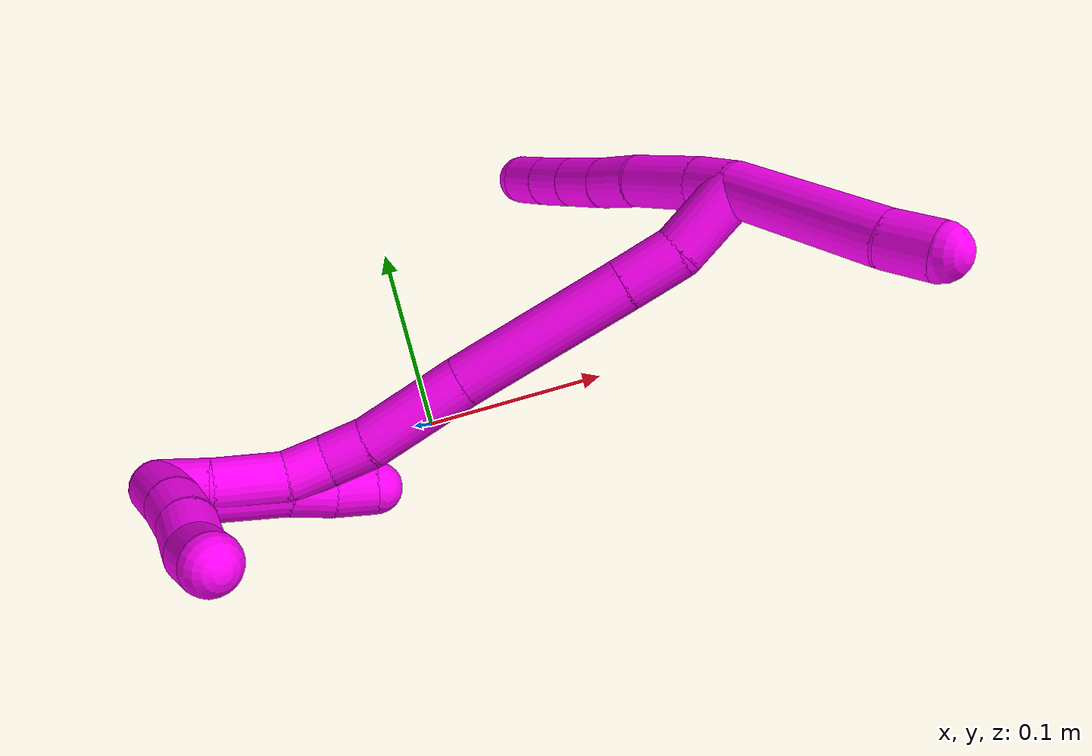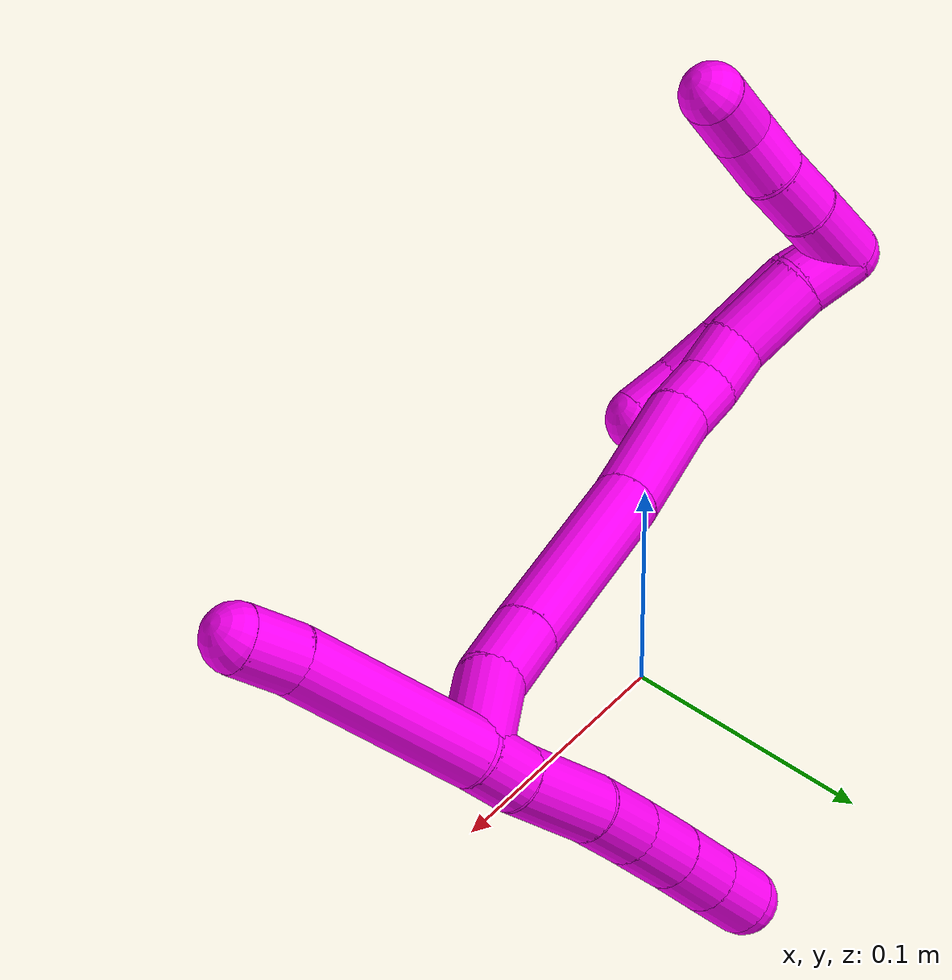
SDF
<sdf version="1.7">
 <world name="default">
  <model name="10">
   <static>0</static>
   <link name="10">
    <collision name="collision-cylinder-e_1_2_8">
     <pose>0.000129 0.000722 -0.010302 -3.07162 0.012512 -0.35374</pose>
     <geometry><cylinder><radius>0.0125</radius><length>0.020656</length></cylinder></geometry>
     <surface>
      <friction><ode><mu>1.16</mu><mu2>1.16</mu2><slip1>0</slip1><slip2>0</slip2></ode></friction>
      <contact><ode><kp>1e+06</kp><kd>1</kd><max_vel>0</max_vel><min_depth>0.001</min_depth></ode></contact>
     </surface>
    </collision>
    <visual name="visual-cylinder-e_1_2_8">
     <pose>0.000129 0.000722 -0.010302 -3.07162 0.012512 -0.35374</pose>
     <geometry><cylinder><radius>0.0125</radius><length>0.020656</length></cylinder></geometry>
     <material><ambient>1 0 0.964706 1</ambient></material>
    </visual>
    <collision name="collision-cylinder-e_2_8_9">
     <pose>-0.001568 0.002249 -0.039062 -3.09801 -0.098528 2.30912</pose>
     <geometry><cylinder><radius>0.0125</radius><length>0.037131</length></cylinder></geometry>
     <surface>
      <friction><ode><mu>1.16</mu><mu2>1.16</mu2><slip1>0</slip1><slip2>0</slip2></ode></friction>
      <contact><ode><kp>1e+06</kp><kd>1</kd><max_vel>0</max_vel><min_depth>0.001</min_depth></ode></contact>
     </surface>
    </collision>
    <visual name="visual-cylinder-e_2_8_9">
     <pose>-0.001568 0.002249 -0.039062 -3.09801 -0.098528 2.30912</pose>
     <geometry><cylinder><radius>0.0125</radius><length>0.037131</length></cylinder></geometry>
     <material><ambient>1 0 0.964706 1</ambient></material>
    </visual>
    <collision name="collision-cylinder-e_3_9_10">
     <pose>-0.003889 0.002279 -0.069534 3.07718 -0.04108 -1.13522</pose>
     <geometry><cylinder><radius>0.0125</radius><length>0.024098</length></cylinder></geometry>
     <surface>
      <friction><ode><mu>1.16</mu><mu2>1.16</mu2><slip1>0</slip1><slip2>0</slip2></ode></friction>
      <contact><ode><kp>1e+06</kp><kd>1</kd><max_vel>0</max_vel><min_depth>0.001</min_depth></ode></contact>
     </surface>
    </collision>
    <visual name="visual-cylinder-e_3_9_10">
     <pose>-0.003889 0.002279 -0.069534 3.07718 -0.04108 -1.13522</pose>
     <geometry><cylinder><radius>0.0125</radius><length>0.024098</length></cylinder></geometry>
     <material><ambient>1 0 0.964706 1</ambient></material>
    </visual>
    <collision name="collision-cylinder-e_4_10_11">
     <pose>-0.004463 0.00133 -0.093677 3.12721 -0.00654 -0.853618</pose>
     <geometry><cylinder><radius>0.0125</radius><length>0.024261</length></cylinder></geometry>
     <surface>
      <friction><ode><mu>1.16</mu><mu2>1.16</mu2><slip1>0</slip1><slip2>0</slip2></ode></friction>
      <contact><ode><kp>1e+06</kp><kd>1</kd><max_vel>0</max_vel><min_depth>0.001</min_depth></ode></contact>
     </surface>
    </collision>
    <visual name="visual-cylinder-e_4_10_11">
     <pose>-0.004463 0.00133 -0.093677 3.12721 -0.00654 -0.853618</pose>
     <geometry><cylinder><radius>0.0125</radius><length>0.024261</length></cylinder></geometry>
     <material><ambient>1 0 0.964706 1</ambient></material>
    </visual>
    <collision name="collision-cylinder-e_5_11_12">
     <pose>-0.004426 0.000909 -0.117019 3.11964 0.010403 0.885032</pose>
     <geometry><cylinder><radius>0.0125</radius><length>0.022434</length></cylinder></geometry>
     <surface>
      <friction><ode><mu>1.16</mu><mu2>1.16</mu2><slip1>0</slip1><slip2>0</slip2></ode></friction>
      <contact><ode><kp>1e+06</kp><kd>1</kd><max_vel>0</max_vel><min_depth>0.001</min_depth></ode></contact>
     </surface>
    </collision>
    <visual name="visual-cylinder-e_5_11_12">
     <pose>-0.004426 0.000909 -0.117019 3.11964 0.010403 0.885032</pose>
     <geometry><cylinder><radius>0.0125</radius><length>0.022434</length></cylinder></geometry>
     <material><ambient>1 0 0.964706 1</ambient></material>
    </visual>
    <collision name="collision-cylinder-e_6_12_6">
     <pose>-0.004204 0.000725 -0.138942 -3.13575 0.009833 -2.06885</pose>
     <geometry><cylinder><radius>0.0125</radius><length>0.02142</length></cylinder></geometry>
     <surface>
      <friction><ode><mu>1.16</mu><mu2>1.16</mu2><slip1>0</slip1><slip2>0</slip2></ode></friction>
      <contact><ode><kp>1e+06</kp><kd>1</kd><max_vel>0</max_vel><min_depth>0.001</min_depth></ode></contact>
     </surface>
    </collision>
    <visual name="visual-cylinder-e_6_12_6">
     <pose>-0.004204 0.000725 -0.138942 -3.13575 0.009833 -2.06885</pose>
     <geometry><cylinder><radius>0.0125</radius><length>0.02142</length></cylinder></geometry>
     <material><ambient>1 0 0.964706 1</ambient></material>
    </visual>
    <collision name="collision-cylinder-e_1_2_13">
     <pose>-0.000679 -0.008901 0.037727 0.231703 -0.017526 -0.00204</pose>
     <geometry><cylinder><radius>0.0125</radius><length>0.077537</length></cylinder></geometry>
     <surface>
      <friction><ode><mu>1.16</mu><mu2>1.16</mu2><slip1>0</slip1><slip2>0</slip2></ode></friction>
      <contact><ode><kp>1e+06</kp><kd>1</kd><max_vel>0</max_vel><min_depth>0.001</min_depth></ode></contact>
     </surface>
    </collision>
    <visual name="visual-cylinder-e_1_2_13">
     <pose>-0.000679 -0.008901 0.037727 0.231703 -0.017526 -0.00204</pose>
     <geometry><cylinder><radius>0.0125</radius><length>0.077537</length></cylinder></geometry>
     <material><ambient>1 0 0.964706 1</ambient></material>
    </visual>
    <collision name="collision-cylinder-e_2_13_5">
     <pose>-0.000225 -0.020188 0.08637 0.215184 0.101139 0.010933</pose>
     <geometry><cylinder><radius>0.0125</radius><length>0.022463</length></cylinder></geometry>
     <surface>
      <friction><ode><mu>1.16</mu><mu2>1.16</mu2><slip1>0</slip1><slip2>0</slip2></ode></friction>
      <contact><ode><kp>1e+06</kp><kd>1</kd><max_vel>0</max_vel><min_depth>0.001</min_depth></ode></contact>
     </surface>
    </collision>
    <visual name="visual-cylinder-e_2_13_5">
     <pose>-0.000225 -0.020188 0.08637 0.215184 0.101139 0.010933</pose>
     <geometry><cylinder><radius>0.0125</radius><length>0.022463</length></cylinder></geometry>
     <material><ambient>1 0 0.964706 1</ambient></material>
    </visual>
    <collision name="collision-cylinder-e_1_2_14">
     <pose>-0.01495 -0.008947 -0.00675 2.21712 -0.92751 -1.5746</pose>
     <geometry><cylinder><radius>0.0125</radius><length>0.037369</length></cylinder></geometry>
     <surface>
      <friction><ode><mu>1.16</mu><mu2>1.16</mu2><slip1>0</slip1><slip2>0</slip2></ode></friction>
      <contact><ode><kp>1e+06</kp><kd>1</kd><max_vel>0</max_vel><min_depth>0.001</min_depth></ode></contact>
     </surface>
    </collision>
    <visual name="visual-cylinder-e_1_2_14">
     <pose>-0.01495 -0.008947 -0.00675 2.21712 -0.92751 -1.5746</pose>
     <geometry><cylinder><radius>0.0125</radius><length>0.037369</length></cylinder></geometry>
     <material><ambient>1 0 0.964706 1</ambient></material>
    </visual>
    <collision name="collision-cylinder-e_2_14_15">
     <pose>-0.041347 -0.021155 -0.020819 2.72238 -0.960089 -2.36584</pose>
     <geometry><cylinder><radius>0.0125</radius><length>0.027947</length></cylinder></geometry>
     <surface>
      <friction><ode><mu>1.16</mu><mu2>1.16</mu2><slip1>0</slip1><slip2>0</slip2></ode></friction>
      <contact><ode><kp>1e+06</kp><kd>1</kd><max_vel>0</max_vel><min_depth>0.001</min_depth></ode></contact>
     </surface>
    </collision>
    <visual name="visual-cylinder-e_2_14_15">
     <pose>-0.041347 -0.021155 -0.020819 2.72238 -0.960089 -2.36584</pose>
     <geometry><cylinder><radius>0.0125</radius><length>0.027947</length></cylinder></geometry>
     <material><ambient>1 0 0.964706 1</ambient></material>
    </visual>
    <collision name="collision-cylinder-e_3_15_16">
     <pose>-0.08739 -0.034304 -0.051269 2.73768 -0.942087 -2.37707</pose>
     <geometry><cylinder><radius>0.0125</radius><length>0.085547</length></cylinder></geometry>
     <surface>
      <friction><ode><mu>1.16</mu><mu2>1.16</mu2><slip1>0</slip1><slip2>0</slip2></ode></friction>
      <contact><ode><kp>1e+06</kp><kd>1</kd><max_vel>0</max_vel><min_depth>0.001</min_depth></ode></contact>
     </surface>
    </collision>
    <visual name="visual-cylinder-e_3_15_16">
     <pose>-0.08739 -0.034304 -0.051269 2.73768 -0.942087 -2.37707</pose>
     <geometry><cylinder><radius>0.0125</radius><length>0.085547</length></cylinder></geometry>
     <material><ambient>1 0 0.964706 1</ambient></material>
    </visual>
    <collision name="collision-cylinder-e_4_16_17">
     <pose>-0.14389 -0.050459 -0.086748 2.6718 -1.00704 -2.32195</pose>
     <geometry><cylinder><radius>0.0125</radius><length>0.051833</length></cylinder></geometry>
     <surface>
      <friction><ode><mu>1.16</mu><mu2>1.16</mu2><slip1>0</slip1><slip2>0</slip2></ode></friction>
      <contact><ode><kp>1e+06</kp><kd>1</kd><max_vel>0</max_vel><min_depth>0.001</min_depth></ode></contact>
     </surface>
    </collision>
    <visual name="visual-cylinder-e_4_16_17">
     <pose>-0.14389 -0.050459 -0.086748 2.6718 -1.00704 -2.32195</pose>
     <geometry><cylinder><radius>0.0125</radius><length>0.051833</length></cylinder></geometry>
     <material><ambient>1 0 0.964706 1</ambient></material>
    </visual>
    <collision name="collision-cylinder-e_5_17_18">
     <pose>-0.174795 -0.057524 -0.104551 2.99681 -1.02118 -2.88409</pose>
     <geometry><cylinder><radius>0.0125</radius><length>0.021105</length></cylinder></geometry>
     <surface>
      <friction><ode><mu>1.16</mu><mu2>1.16</mu2><slip1>0</slip1><slip2>0</slip2></ode></friction>
      <contact><ode><kp>1e+06</kp><kd>1</kd><max_vel>0</max_vel><min_depth>0.001</min_depth></ode></contact>
     </surface>
    </collision>
    <visual name="visual-cylinder-e_5_17_18">
     <pose>-0.174795 -0.057524 -0.104551 2.99681 -1.02118 -2.88409</pose>
     <geometry><cylinder><radius>0.0125</radius><length>0.021105</length></cylinder></geometry>
     <material><ambient>1 0 0.964706 1</ambient></material>
    </visual>
    <collision name="collision-cylinder-e_6_18_19">
     <pose>-0.193477 -0.057815 -0.113241 -2.98679 -1.24478 2.92626</pose>
     <geometry><cylinder><radius>0.0125</radius><length>0.020445</length></cylinder></geometry>
     <surface>
      <friction><ode><mu>1.16</mu><mu2>1.16</mu2><slip1>0</slip1><slip2>0</slip2></ode></friction>
      <contact><ode><kp>1e+06</kp><kd>1</kd><max_vel>0</max_vel><min_depth>0.001</min_depth></ode></contact>
     </surface>
    </collision>
    <visual name="visual-cylinder-e_6_18_19">
     <pose>-0.193477 -0.057815 -0.113241 -2.98679 -1.24478 2.92626</pose>
     <geometry><cylinder><radius>0.0125</radius><length>0.020445</length></cylinder></geometry>
     <material><ambient>1 0 0.964706 1</ambient></material>
    </visual>
    <collision name="collision-cylinder-e_7_19_20">
     <pose>-0.217867 -0.050937 -0.120945 -2.18247 -1.08395 1.7168</pose>
     <geometry><cylinder><radius>0.0125</radius><length>0.033277</length></cylinder></geometry>
     <surface>
      <friction><ode><mu>1.16</mu><mu2>1.16</mu2><slip1>0</slip1><slip2>0</slip2></ode></friction>
      <contact><ode><kp>1e+06</kp><kd>1</kd><max_vel>0</max_vel><min_depth>0.001</min_depth></ode></contact>
     </surface>
    </collision>
    <visual name="visual-cylinder-e_7_19_20">
     <pose>-0.217867 -0.050937 -0.120945 -2.18247 -1.08395 1.7168</pose>
     <geometry><cylinder><radius>0.0125</radius><length>0.033277</length></cylinder></geometry>
     <material><ambient>1 0 0.964706 1</ambient></material>
    </visual>
    <collision name="collision-cylinder-e_8_20_1">
     <pose>-0.241828 -0.040325 -0.130177 -2.41418 -0.967617 1.88778</pose>
     <geometry><cylinder><radius>0.0125</radius><length>0.022477</length></cylinder></geometry>
     <surface>
      <friction><ode><mu>1.16</mu><mu2>1.16</mu2><slip1>0</slip1><slip2>0</slip2></ode></friction>
      <contact><ode><kp>1e+06</kp><kd>1</kd><max_vel>0</max_vel><min_depth>0.001</min_depth></ode></contact>
     </surface>
    </collision>
    <visual name="visual-cylinder-e_8_20_1">
     <pose>-0.241828 -0.040325 -0.130177 -2.41418 -0.967617 1.88778</pose>
     <geometry><cylinder><radius>0.0125</radius><length>0.022477</length></cylinder></geometry>
     <material><ambient>1 0 0.964706 1</ambient></material>
    </visual>
    <collision name="collision-cylinder-e_1_1_21">
     <pose>-0.252632 -0.03494 -0.119741 -0.075249 -0.10132 0.003817</pose>
     <geometry><cylinder><radius>0.0125</radius><length>0.030638</length></cylinder></geometry>
     <surface>
      <friction><ode><mu>1.16</mu><mu2>1.16</mu2><slip1>0</slip1><slip2>0</slip2></ode></friction>
      <contact><ode><kp>1e+06</kp><kd>1</kd><max_vel>0</max_vel><min_depth>0.001</min_depth></ode></contact>
     </surface>
    </collision>
    <visual name="visual-cylinder-e_1_1_21">
     <pose>-0.252632 -0.03494 -0.119741 -0.075249 -0.10132 0.003817</pose>
     <geometry><cylinder><radius>0.0125</radius><length>0.030638</length></cylinder></geometry>
     <material><ambient>1 0 0.964706 1</ambient></material>
    </visual>
    <collision name="collision-cylinder-e_2_21_22">
     <pose>-0.255917 -0.034009 -0.093395 0.019246 -0.154353 -0.001488</pose>
     <geometry><cylinder><radius>0.0125</radius><length>0.022569</length></cylinder></geometry>
     <surface>
      <friction><ode><mu>1.16</mu><mu2>1.16</mu2><slip1>0</slip1><slip2>0</slip2></ode></friction>
      <contact><ode><kp>1e+06</kp><kd>1</kd><max_vel>0</max_vel><min_depth>0.001</min_depth></ode></contact>
     </surface>
    </collision>
    <visual name="visual-cylinder-e_2_21_22">
     <pose>-0.255917 -0.034009 -0.093395 0.019246 -0.154353 -0.001488</pose>
     <geometry><cylinder><radius>0.0125</radius><length>0.022569</length></cylinder></geometry>
     <material><ambient>1 0 0.964706 1</ambient></material>
    </visual>
    <collision name="collision-cylinder-e_3_22_23">
     <pose>-0.260635 -0.035053 -0.07148 0.076892 -0.269524 -0.01043</pose>
     <geometry><cylinder><radius>0.0125</radius><length>0.022407</length></cylinder></geometry>
     <surface>
      <friction><ode><mu>1.16</mu><mu2>1.16</mu2><slip1>0</slip1><slip2>0</slip2></ode></friction>
      <contact><ode><kp>1e+06</kp><kd>1</kd><max_vel>0</max_vel><min_depth>0.001</min_depth></ode></contact>
     </surface>
    </collision>
    <visual name="visual-cylinder-e_3_22_23">
     <pose>-0.260635 -0.035053 -0.07148 0.076892 -0.269524 -0.01043</pose>
     <geometry><cylinder><radius>0.0125</radius><length>0.022407</length></cylinder></geometry>
     <material><ambient>1 0 0.964706 1</ambient></material>
    </visual>
    <collision name="collision-cylinder-e_4_23_4">
     <pose>-0.264487 -0.033463 -0.048794 -0.200274 -0.071337 0.00717</pose>
     <geometry><cylinder><radius>0.0125</radius><length>0.024386</length></cylinder></geometry>
     <surface>
      <friction><ode><mu>1.16</mu><mu2>1.16</mu2><slip1>0</slip1><slip2>0</slip2></ode></friction>
      <contact><ode><kp>1e+06</kp><kd>1</kd><max_vel>0</max_vel><min_depth>0.001</min_depth></ode></contact>
     </surface>
    </collision>
    <visual name="visual-cylinder-e_4_23_4">
     <pose>-0.264487 -0.033463 -0.048794 -0.200274 -0.071337 0.00717</pose>
     <geometry><cylinder><radius>0.0125</radius><length>0.024386</length></cylinder></geometry>
     <material><ambient>1 0 0.964706 1</ambient></material>
    </visual>
    <collision name="collision-cylinder-e_1_1_24">
     <pose>-0.242643 -0.042765 -0.131093 1.04843 0.830717 0.499325</pose>
     <geometry><cylinder><radius>0.0125</radius><length>0.022858</length></cylinder></geometry>
     <surface>
      <friction><ode><mu>1.16</mu><mu2>1.16</mu2><slip1>0</slip1><slip2>0</slip2></ode></friction>
      <contact><ode><kp>1e+06</kp><kd>1</kd><max_vel>0</max_vel><min_depth>0.001</min_depth></ode></contact>
     </surface>
    </collision>
    <visual name="visual-cylinder-e_1_1_24">
     <pose>-0.242643 -0.042765 -0.131093 1.04843 0.830717 0.499325</pose>
     <geometry><cylinder><radius>0.0125</radius><length>0.022858</length></cylinder></geometry>
     <material><ambient>1 0 0.964706 1</ambient></material>
    </visual>
    <collision name="collision-cylinder-e_2_24_25">
     <pose>-0.219027 -0.056827 -0.123314 1.08116 1.06707 0.681418</pose>
     <geometry><cylinder><radius>0.0125</radius><length>0.034659</length></cylinder></geometry>
     <surface>
      <friction><ode><mu>1.16</mu><mu2>1.16</mu2><slip1>0</slip1><slip2>0</slip2></ode></friction>
      <contact><ode><kp>1e+06</kp><kd>1</kd><max_vel>0</max_vel><min_depth>0.001</min_depth></ode></contact>
     </surface>
    </collision>
    <visual name="visual-cylinder-e_2_24_25">
     <pose>-0.219027 -0.056827 -0.123314 1.08116 1.06707 0.681418</pose>
     <geometry><cylinder><radius>0.0125</radius><length>0.034659</length></cylinder></geometry>
     <material><ambient>1 0 0.964706 1</ambient></material>
    </visual>
    <collision name="collision-cylinder-e_3_25_26">
     <pose>-0.194827 -0.070194 -0.117642 1.28816 0.96634 0.750576</pose>
     <geometry><cylinder><radius>0.0125</radius><length>0.021932</length></cylinder></geometry>
     <surface>
      <friction><ode><mu>1.16</mu><mu2>1.16</mu2><slip1>0</slip1><slip2>0</slip2></ode></friction>
      <contact><ode><kp>1e+06</kp><kd>1</kd><max_vel>0</max_vel><min_depth>0.001</min_depth></ode></contact>
     </surface>
    </collision>
    <visual name="visual-cylinder-e_3_25_26">
     <pose>-0.194827 -0.070194 -0.117642 1.28816 0.96634 0.750576</pose>
     <geometry><cylinder><radius>0.0125</radius><length>0.021932</length></cylinder></geometry>
     <material><ambient>1 0 0.964706 1</ambient></material>
    </visual>
    <collision name="collision-cylinder-e_4_26_3">
     <pose>-0.177063 -0.079794 -0.11189 0.733297 1.01726 0.421849</pose>
     <geometry><cylinder><radius>0.0125</radius><length>0.02055</length></cylinder></geometry>
     <surface>
      <friction><ode><mu>1.16</mu><mu2>1.16</mu2><slip1>0</slip1><slip2>0</slip2></ode></friction>
      <contact><ode><kp>1e+06</kp><kd>1</kd><max_vel>0</max_vel><min_depth>0.001</min_depth></ode></contact>
     </surface>
    </collision>
    <visual name="visual-cylinder-e_4_26_3">
     <pose>-0.177063 -0.079794 -0.11189 0.733297 1.01726 0.421849</pose>
     <geometry><cylinder><radius>0.0125</radius><length>0.02055</length></cylinder></geometry>
     <material><ambient>1 0 0.964706 1</ambient></material>
    </visual>
    <collision name="collision-sphere-3">
     <pose>-0.168322 -0.08341 -0.107877 0 -0 0</pose>
     <geometry><sphere><radius>0.0125</radius></sphere></geometry>
     <surface>
      <friction><ode><mu>1.16</mu><mu2>1.16</mu2><slip1>0</slip1><slip2>0</slip2></ode></friction>
      <contact><ode><kp>1e+06</kp><kd>1</kd><max_vel>0</max_vel><min_depth>0.001</min_depth></ode></contact>
     </surface>
    </collision>
    <visual name="visual-sphere-3">
     <pose>-0.168322 -0.08341 -0.107877 0 -0 0</pose>
     <geometry><sphere><radius>0.0125</radius></sphere></geometry>
     <material><ambient>1 0 0.964706 1</ambient></material>
    </visual>
    <collision name="collision-sphere-26">
     <pose>-0.185803 -0.076179 -0.115904 0 -0 0</pose>
     <geometry><sphere><radius>0.0125</radius></sphere></geometry>
     <surface>
      <friction><ode><mu>1.16</mu><mu2>1.16</mu2><slip1>0</slip1><slip2>0</slip2></ode></friction>
      <contact><ode><kp>1e+06</kp><kd>1</kd><max_vel>0</max_vel><min_depth>0.001</min_depth></ode></contact>
     </surface>
    </collision>
    <visual name="visual-sphere-26">
     <pose>-0.185803 -0.076179 -0.115904 0 -0 0</pose>
     <geometry><sphere><radius>0.0125</radius></sphere></geometry>
     <material><ambient>1 0 0.964706 1</ambient></material>
    </visual>
    <collision name="collision-sphere-25">
     <pose>-0.20385 -0.064209 -0.11938 0 -0 0</pose>
     <geometry><sphere><radius>0.0125</radius></sphere></geometry>
     <surface>
      <friction><ode><mu>1.16</mu><mu2>1.16</mu2><slip1>0</slip1><slip2>0</slip2></ode></friction>
      <contact><ode><kp>1e+06</kp><kd>1</kd><max_vel>0</max_vel><min_depth>0.001</min_depth></ode></contact>
     </surface>
    </collision>
    <visual name="visual-sphere-25">
     <pose>-0.20385 -0.064209 -0.11938 0 -0 0</pose>
     <geometry><sphere><radius>0.0125</radius></sphere></geometry>
     <material><ambient>1 0 0.964706 1</ambient></material>
    </visual>
    <collision name="collision-sphere-24">
     <pose>-0.234204 -0.049445 -0.127248 0 -0 0</pose>
     <geometry><sphere><radius>0.0125</radius></sphere></geometry>
     <surface>
      <friction><ode><mu>1.16</mu><mu2>1.16</mu2><slip1>0</slip1><slip2>0</slip2></ode></friction>
      <contact><ode><kp>1e+06</kp><kd>1</kd><max_vel>0</max_vel><min_depth>0.001</min_depth></ode></contact>
     </surface>
    </collision>
    <visual name="visual-sphere-24">
     <pose>-0.234204 -0.049445 -0.127248 0 -0 0</pose>
     <geometry><sphere><radius>0.0125</radius></sphere></geometry>
     <material><ambient>1 0 0.964706 1</ambient></material>
    </visual>
    <collision name="collision-sphere-4">
     <pose>-0.265356 -0.031044 -0.036875 0 -0 0</pose>
     <geometry><sphere><radius>0.0125</radius></sphere></geometry>
     <surface>
      <friction><ode><mu>1.16</mu><mu2>1.16</mu2><slip1>0</slip1><slip2>0</slip2></ode></friction>
      <contact><ode><kp>1e+06</kp><kd>1</kd><max_vel>0</max_vel><min_depth>0.001</min_depth></ode></contact>
     </surface>
    </collision>
    <visual name="visual-sphere-4">
     <pose>-0.265356 -0.031044 -0.036875 0 -0 0</pose>
     <geometry><sphere><radius>0.0125</radius></sphere></geometry>
     <material><ambient>1 0 0.964706 1</ambient></material>
    </visual>
    <collision name="collision-sphere-23">
     <pose>-0.263618 -0.035883 -0.060713 0 -0 0</pose>
     <geometry><sphere><radius>0.0125</radius></sphere></geometry>
     <surface>
      <friction><ode><mu>1.16</mu><mu2>1.16</mu2><slip1>0</slip1><slip2>0</slip2></ode></friction>
      <contact><ode><kp>1e+06</kp><kd>1</kd><max_vel>0</max_vel><min_depth>0.001</min_depth></ode></contact>
     </surface>
    </collision>
    <visual name="visual-sphere-23">
     <pose>-0.263618 -0.035883 -0.060713 0 -0 0</pose>
     <geometry><sphere><radius>0.0125</radius></sphere></geometry>
     <material><ambient>1 0 0.964706 1</ambient></material>
    </visual>
    <collision name="collision-sphere-22">
     <pose>-0.257652 -0.034224 -0.082247 0 -0 0</pose>
     <geometry><sphere><radius>0.0125</radius></sphere></geometry>
     <surface>
      <friction><ode><mu>1.16</mu><mu2>1.16</mu2><slip1>0</slip1><slip2>0</slip2></ode></friction>
      <contact><ode><kp>1e+06</kp><kd>1</kd><max_vel>0</max_vel><min_depth>0.001</min_depth></ode></contact>
     </surface>
    </collision>
    <visual name="visual-sphere-22">
     <pose>-0.257652 -0.034224 -0.082247 0 -0 0</pose>
     <geometry><sphere><radius>0.0125</radius></sphere></geometry>
     <material><ambient>1 0 0.964706 1</ambient></material>
    </visual>
    <collision name="collision-sphere-21">
     <pose>-0.254182 -0.033794 -0.104544 0 -0 0</pose>
     <geometry><sphere><radius>0.0125</radius></sphere></geometry>
     <surface>
      <friction><ode><mu>1.16</mu><mu2>1.16</mu2><slip1>0</slip1><slip2>0</slip2></ode></friction>
      <contact><ode><kp>1e+06</kp><kd>1</kd><max_vel>0</max_vel><min_depth>0.001</min_depth></ode></contact>
     </surface>
    </collision>
    <visual name="visual-sphere-21">
     <pose>-0.254182 -0.033794 -0.104544 0 -0 0</pose>
     <geometry><sphere><radius>0.0125</radius></sphere></geometry>
     <material><ambient>1 0 0.964706 1</ambient></material>
    </visual>
    <collision name="collision-sphere-1">
     <pose>-0.251083 -0.036086 -0.134939 0 -0 0</pose>
     <geometry><sphere><radius>0.0125</radius></sphere></geometry>
     <surface>
      <friction><ode><mu>1.16</mu><mu2>1.16</mu2><slip1>0</slip1><slip2>0</slip2></ode></friction>
      <contact><ode><kp>1e+06</kp><kd>1</kd><max_vel>0</max_vel><min_depth>0.001</min_depth></ode></contact>
     </surface>
    </collision>
    <visual name="visual-sphere-1">
     <pose>-0.251083 -0.036086 -0.134939 0 -0 0</pose>
     <geometry><sphere><radius>0.0125</radius></sphere></geometry>
     <material><ambient>1 0 0.964706 1</ambient></material>
    </visual>
    <collision name="collision-sphere-12">
     <pose>-0.004309 0.000663 -0.128233 0 -0 0</pose>
     <geometry><sphere><radius>0.0125</radius></sphere></geometry>
     <surface>
      <friction><ode><mu>1.16</mu><mu2>1.16</mu2><slip1>0</slip1><slip2>0</slip2></ode></friction>
      <contact><ode><kp>1e+06</kp><kd>1</kd><max_vel>0</max_vel><min_depth>0.001</min_depth></ode></contact>
     </surface>
    </collision>
    <visual name="visual-sphere-12">
     <pose>-0.004309 0.000663 -0.128233 0 -0 0</pose>
     <geometry><sphere><radius>0.0125</radius></sphere></geometry>
     <material><ambient>1 0 0.964706 1</ambient></material>
    </visual>
    <collision name="collision-sphere-11">
     <pose>-0.004542 0.001155 -0.105806 0 -0 0</pose>
     <geometry><sphere><radius>0.0125</radius></sphere></geometry>
     <surface>
      <friction><ode><mu>1.16</mu><mu2>1.16</mu2><slip1>0</slip1><slip2>0</slip2></ode></friction>
      <contact><ode><kp>1e+06</kp><kd>1</kd><max_vel>0</max_vel><min_depth>0.001</min_depth></ode></contact>
     </surface>
    </collision>
    <visual name="visual-sphere-11">
     <pose>-0.004542 0.001155 -0.105806 0 -0 0</pose>
     <geometry><sphere><radius>0.0125</radius></sphere></geometry>
     <material><ambient>1 0 0.964706 1</ambient></material>
    </visual>
    <collision name="collision-sphere-10">
     <pose>-0.004384 0.001504 -0.081548 0 -0 0</pose>
     <geometry><sphere><radius>0.0125</radius></sphere></geometry>
     <surface>
      <friction><ode><mu>1.16</mu><mu2>1.16</mu2><slip1>0</slip1><slip2>0</slip2></ode></friction>
      <contact><ode><kp>1e+06</kp><kd>1</kd><max_vel>0</max_vel><min_depth>0.001</min_depth></ode></contact>
     </surface>
    </collision>
    <visual name="visual-sphere-10">
     <pose>-0.004384 0.001504 -0.081548 0 -0 0</pose>
     <geometry><sphere><radius>0.0125</radius></sphere></geometry>
     <material><ambient>1 0 0.964706 1</ambient></material>
    </visual>
    <collision name="collision-sphere-9">
     <pose>-0.003394 0.003054 -0.05752 0 -0 0</pose>
     <geometry><sphere><radius>0.0125</radius></sphere></geometry>
     <surface>
      <friction><ode><mu>1.16</mu><mu2>1.16</mu2><slip1>0</slip1><slip2>0</slip2></ode></friction>
      <contact><ode><kp>1e+06</kp><kd>1</kd><max_vel>0</max_vel><min_depth>0.001</min_depth></ode></contact>
     </surface>
    </collision>
    <visual name="visual-sphere-9">
     <pose>-0.003394 0.003054 -0.05752 0 -0 0</pose>
     <geometry><sphere><radius>0.0125</radius></sphere></geometry>
     <material><ambient>1 0 0.964706 1</ambient></material>
    </visual>
    <collision name="collision-sphere-2">
     <geometry><sphere><radius>0.0125</radius></sphere></geometry>
     <surface>
      <friction><ode><mu>1.16</mu><mu2>1.16</mu2><slip1>0</slip1><slip2>0</slip2></ode></friction>
      <contact><ode><kp>1e+06</kp><kd>1</kd><max_vel>0</max_vel><min_depth>0.001</min_depth></ode></contact>
     </surface>
    </collision>
    <visual name="visual-sphere-2">
     <geometry><sphere><radius>0.0125</radius></sphere></geometry>
     <material><ambient>1 0 0.964706 1</ambient></material>
    </visual>
    <collision name="collision-sphere-19">
     <pose>-0.203161 -0.05731 -0.116475 0 -0 0</pose>
     <geometry><sphere><radius>0.0125</radius></sphere></geometry>
     <surface>
      <friction><ode><mu>1.16</mu><mu2>1.16</mu2><slip1>0</slip1><slip2>0</slip2></ode></friction>
      <contact><ode><kp>1e+06</kp><kd>1</kd><max_vel>0</max_vel><min_depth>0.001</min_depth></ode></contact>
     </surface>
    </collision>
    <visual name="visual-sphere-19">
     <pose>-0.203161 -0.05731 -0.116475 0 -0 0</pose>
     <geometry><sphere><radius>0.0125</radius></sphere></geometry>
     <material><ambient>1 0 0.964706 1</ambient></material>
    </visual>
    <collision name="collision-sphere-8">
     <pose>0.000258 0.001444 -0.020604 0 -0 0</pose>
     <geometry><sphere><radius>0.0125</radius></sphere></geometry>
     <surface>
      <friction><ode><mu>1.16</mu><mu2>1.16</mu2><slip1>0</slip1><slip2>0</slip2></ode></friction>
      <contact><ode><kp>1e+06</kp><kd>1</kd><max_vel>0</max_vel><min_depth>0.001</min_depth></ode></contact>
     </surface>
    </collision>
    <visual name="visual-sphere-8">
     <pose>0.000258 0.001444 -0.020604 0 -0 0</pose>
     <geometry><sphere><radius>0.0125</radius></sphere></geometry>
     <material><ambient>1 0 0.964706 1</ambient></material>
    </visual>
    <collision name="collision-sphere-6">
     <pose>-0.004098 0.000788 -0.149651 0 -0 0</pose>
     <geometry><sphere><radius>0.0125</radius></sphere></geometry>
     <surface>
      <friction><ode><mu>1.16</mu><mu2>1.16</mu2><slip1>0</slip1><slip2>0</slip2></ode></friction>
      <contact><ode><kp>1e+06</kp><kd>1</kd><max_vel>0</max_vel><min_depth>0.001</min_depth></ode></contact>
     </surface>
    </collision>
    <visual name="visual-sphere-6">
     <pose>-0.004098 0.000788 -0.149651 0 -0 0</pose>
     <geometry><sphere><radius>0.0125</radius></sphere></geometry>
     <material><ambient>1 0 0.964706 1</ambient></material>
    </visual>
    <collision name="collision-sphere-13">
     <pose>-0.001359 -0.017802 0.075453 0 -0 0</pose>
     <geometry><sphere><radius>0.0125</radius></sphere></geometry>
     <surface>
      <friction><ode><mu>1.16</mu><mu2>1.16</mu2><slip1>0</slip1><slip2>0</slip2></ode></friction>
      <contact><ode><kp>1e+06</kp><kd>1</kd><max_vel>0</max_vel><min_depth>0.001</min_depth></ode></contact>
     </surface>
    </collision>
    <visual name="visual-sphere-13">
     <pose>-0.001359 -0.017802 0.075453 0 -0 0</pose>
     <geometry><sphere><radius>0.0125</radius></sphere></geometry>
     <material><ambient>1 0 0.964706 1</ambient></material>
    </visual>
    <collision name="collision-sphere-5">
     <pose>0.000909 -0.022574 0.097286 0 -0 0</pose>
     <geometry><sphere><radius>0.0125</radius></sphere></geometry>
     <surface>
      <friction><ode><mu>1.16</mu><mu2>1.16</mu2><slip1>0</slip1><slip2>0</slip2></ode></friction>
      <contact><ode><kp>1e+06</kp><kd>1</kd><max_vel>0</max_vel><min_depth>0.001</min_depth></ode></contact>
     </surface>
    </collision>
    <visual name="visual-sphere-5">
     <pose>0.000909 -0.022574 0.097286 0 -0 0</pose>
     <geometry><sphere><radius>0.0125</radius></sphere></geometry>
     <material><ambient>1 0 0.964706 1</ambient></material>
    </visual>
    <collision name="collision-sphere-14">
     <pose>-0.0299 -0.017894 -0.013499 0 -0 0</pose>
     <geometry><sphere><radius>0.0125</radius></sphere></geometry>
     <surface>
      <friction><ode><mu>1.16</mu><mu2>1.16</mu2><slip1>0</slip1><slip2>0</slip2></ode></friction>
      <contact><ode><kp>1e+06</kp><kd>1</kd><max_vel>0</max_vel><min_depth>0.001</min_depth></ode></contact>
     </surface>
    </collision>
    <visual name="visual-sphere-14">
     <pose>-0.0299 -0.017894 -0.013499 0 -0 0</pose>
     <geometry><sphere><radius>0.0125</radius></sphere></geometry>
     <material><ambient>1 0 0.964706 1</ambient></material>
    </visual>
    <collision name="collision-sphere-15">
     <pose>-0.052795 -0.024417 -0.028138 0 -0 0</pose>
     <geometry><sphere><radius>0.0125</radius></sphere></geometry>
     <surface>
      <friction><ode><mu>1.16</mu><mu2>1.16</mu2><slip1>0</slip1><slip2>0</slip2></ode></friction>
      <contact><ode><kp>1e+06</kp><kd>1</kd><max_vel>0</max_vel><min_depth>0.001</min_depth></ode></contact>
     </surface>
    </collision>
    <visual name="visual-sphere-15">
     <pose>-0.052795 -0.024417 -0.028138 0 -0 0</pose>
     <geometry><sphere><radius>0.0125</radius></sphere></geometry>
     <material><ambient>1 0 0.964706 1</ambient></material>
    </visual>
    <collision name="collision-sphere-16">
     <pose>-0.121984 -0.04419 -0.0744 0 -0 0</pose>
     <geometry><sphere><radius>0.0125</radius></sphere></geometry>
     <surface>
      <friction><ode><mu>1.16</mu><mu2>1.16</mu2><slip1>0</slip1><slip2>0</slip2></ode></friction>
      <contact><ode><kp>1e+06</kp><kd>1</kd><max_vel>0</max_vel><min_depth>0.001</min_depth></ode></contact>
     </surface>
    </collision>
    <visual name="visual-sphere-16">
     <pose>-0.121984 -0.04419 -0.0744 0 -0 0</pose>
     <geometry><sphere><radius>0.0125</radius></sphere></geometry>
     <material><ambient>1 0 0.964706 1</ambient></material>
    </visual>
    <collision name="collision-sphere-17">
     <pose>-0.165796 -0.056729 -0.099097 0 -0 0</pose>
     <geometry><sphere><radius>0.0125</radius></sphere></geometry>
     <surface>
      <friction><ode><mu>1.16</mu><mu2>1.16</mu2><slip1>0</slip1><slip2>0</slip2></ode></friction>
      <contact><ode><kp>1e+06</kp><kd>1</kd><max_vel>0</max_vel><min_depth>0.001</min_depth></ode></contact>
     </surface>
    </collision>
    <visual name="visual-sphere-17">
     <pose>-0.165796 -0.056729 -0.099097 0 -0 0</pose>
     <geometry><sphere><radius>0.0125</radius></sphere></geometry>
     <material><ambient>1 0 0.964706 1</ambient></material>
    </visual>
    <collision name="collision-sphere-18">
     <pose>-0.183793 -0.058319 -0.110006 0 -0 0</pose>
     <geometry><sphere><radius>0.0125</radius></sphere></geometry>
     <surface>
      <friction><ode><mu>1.16</mu><mu2>1.16</mu2><slip1>0</slip1><slip2>0</slip2></ode></friction>
      <contact><ode><kp>1e+06</kp><kd>1</kd><max_vel>0</max_vel><min_depth>0.001</min_depth></ode></contact>
     </surface>
    </collision>
    <visual name="visual-sphere-18">
     <pose>-0.183793 -0.058319 -0.110006 0 -0 0</pose>
     <geometry><sphere><radius>0.0125</radius></sphere></geometry>
     <material><ambient>1 0 0.964706 1</ambient></material>
    </visual>
    <collision name="collision-sphere-20">
     <pose>-0.232572 -0.044564 -0.125415 0 -0 0</pose>
     <geometry><sphere><radius>0.0125</radius></sphere></geometry>
     <surface>
      <friction><ode><mu>1.16</mu><mu2>1.16</mu2><slip1>0</slip1><slip2>0</slip2></ode></friction>
      <contact><ode><kp>1e+06</kp><kd>1</kd><max_vel>0</max_vel><min_depth>0.001</min_depth></ode></contact>
     </surface>
    </collision>
    <visual name="visual-sphere-20">
     <pose>-0.232572 -0.044564 -0.125415 0 -0 0</pose>
     <geometry><sphere><radius>0.0125</radius></sphere></geometry>
     <material><ambient>1 0 0.964706 1</ambient></material>
    </visual>
    <inertial>
     <pose>-0.112451 -0.029282 -0.064339 0 -0 0</pose>
     <mass>0.75</mass>
     <inertia>
      <ixx>-1.5e-05</ixx>
      <ixy>0</ixy>
      <ixz>0</ixz>
      <iyy>0.000101</iyy>
      <iyz>0</iyz>
      <izz>9.2e-05</izz>
     </inertia>
    </inertial>
   </link>
   <pose>0.168835 0.061924 0.150195 0.529928 0.461488 0.330967</pose>
  </model>
 </world>
</sdf>
